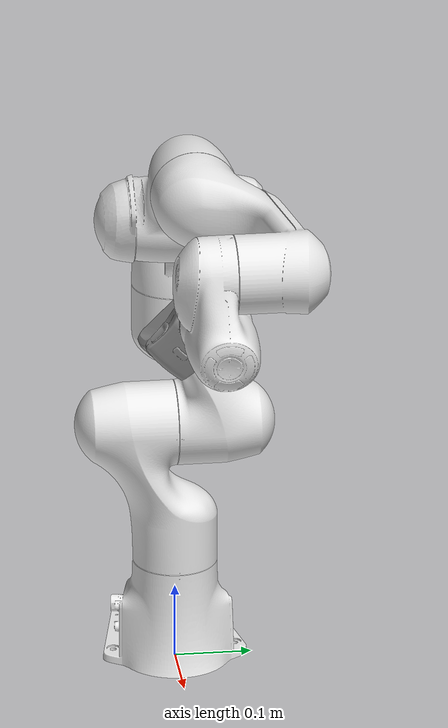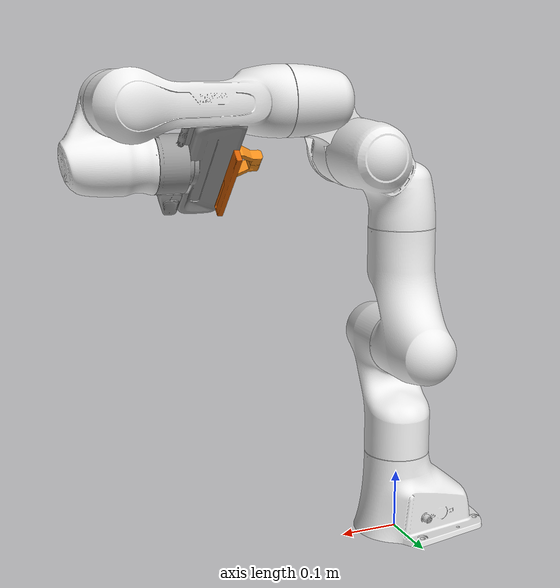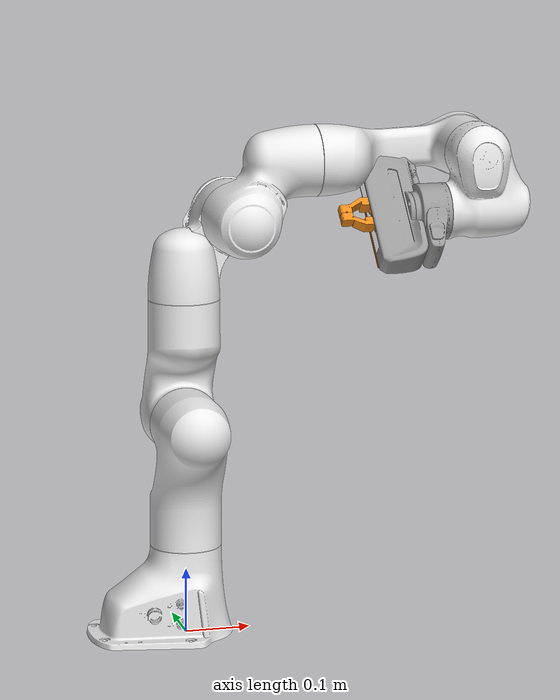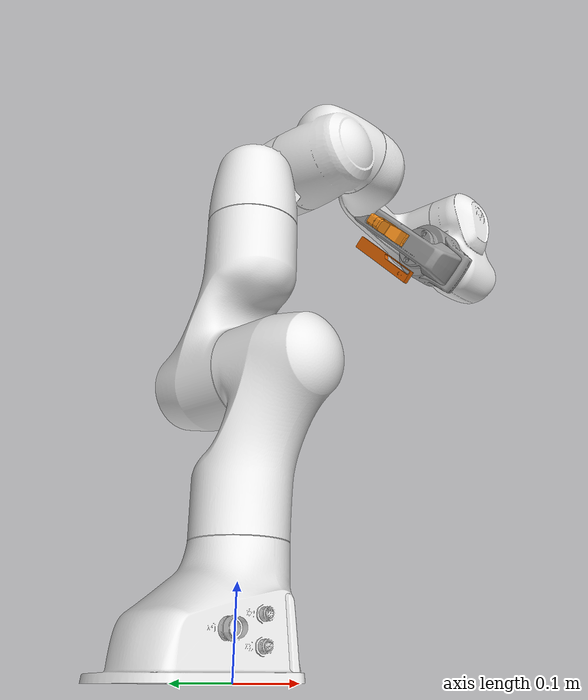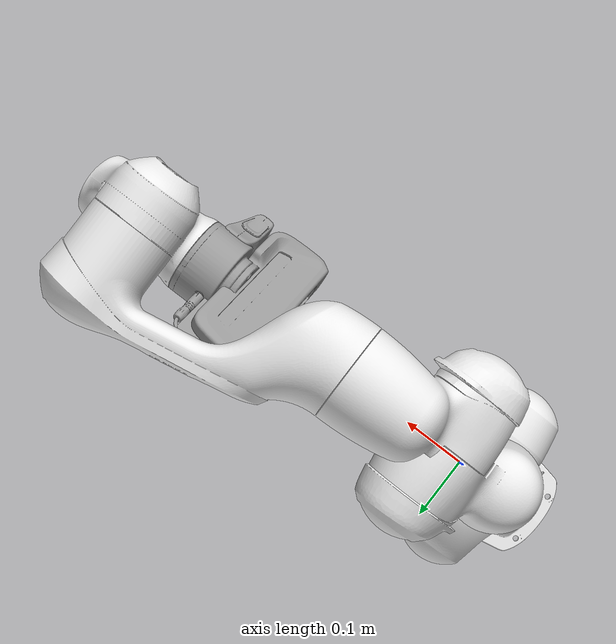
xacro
<?xml version="1.0"?>
<robot xmlns:xacro="http://www.ros.org/wiki/xacro" name="panda">

  <xacro:arg name="use_gazebo" default="true" />
  <xacro:arg name="sensor_prefix" default="r200" />
  <xacro:arg name="ros2_control_params" default="" />

  <!-- franka -->
  <xacro:include filename="$(find panda_description)/urdf/panda_arm_hand.urdf.xacro" />

  <!-- RS -->
  <xacro:include filename="$(find realsense_gazebo_plugin)/urdf/realsense-D435.macro.xacro"/>
  <!-- Here we include the end-effector by setting the parameters -->
  <xacro:realsense-d435 link_prefix="" sensor_prefix="$(arg sensor_prefix)" parent="panda_link8">
    <origin xyz="0.03 -0.03 0.05" rpy="0 ${-pi/2} ${3*pi/4}" />
  </xacro:realsense-d435>
</robot>

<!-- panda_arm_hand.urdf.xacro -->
<robot xmlns:xacro="http://www.ros.org/wiki/xacro" name="panda">
  <xacro:arg name="ros2_control_params" default=""/>
  <xacro:include filename="$(find panda_description)/xacro/panda_arm.xacro"/>
  <xacro:include filename="$(find panda_description)/xacro/hand.xacro"/>

  <!-- for simulation -->
  <xacro:include filename="$(find panda_description)/xacro/panda.gazebo.xacro"/>
  <xacro:include filename="$(find panda_description)/xacro/panda.control.xacro"/>
  <!-- end for simulation -->

  <xacro:panda_arm />
  <xacro:hand ns="panda" rpy="0 0 ${-pi/4}" connected_to="panda_link8"/>
  <xacro:panda_gazebo arm_id="panda"/>
  <xacro:panda_control arm_id="panda" load_hand="true" ros2_control_params="$(arg ros2_control_params)"/>
  <!-- for simulation -->
  <xacro:arg name="robot_name" default="panda"/>
  <!-- end for simulation -->
</robot>

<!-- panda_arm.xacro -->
<robot xmlns:xacro="http://www.ros.org/wiki/xacro" name="panda">
  <xacro:macro name="panda_arm" params="arm_id:='panda' description_pkg:='panda_description' connected_to:='' xyz:='0 0 0' rpy:='0 0 0'">

    <!--
    Panda is either connected to an external link
    or to a virtual world link.
    -->

    <xacro:unless value="${not connected_to}">
      <joint name="${arm_id}_joint_${connected_to}" type="fixed">
        <parent link="${connected_to}"/>
        <child link="${arm_id}_link0"/>
        <origin rpy="${rpy}" xyz="${xyz}"/>
      </joint>
    </xacro:unless>

    <!-- for simulation -->
    <xacro:if value="${not connected_to}">
      <link name="world" />

      <joint name="robot_to_world" type="fixed">
        <parent link="world" />
        <child link="${arm_id}_link0" />
        <origin xyz="0.0 0.0 0.0" rpy="0.0 0.0 0.0" />
      </joint>
      </xacro:if>
    <xacro:property name="joint_damping" value="1.0"/>
    <!-- end for simulation -->

    <link name="${arm_id}_link0">
      <visual>
        <geometry>
          <mesh filename="package://${description_pkg}/meshes/visual/link0.dae"/>
        </geometry>
      </visual>
      <collision>
        <geometry>
          <mesh filename="package://${description_pkg}/meshes/collision/link0.stl"/>
        </geometry>
      </collision>

      <!-- for simulation -->
      <inertial>
        <origin xyz="0 0 0" rpy="0 0 0" />
        <mass value="3.06" />
        <inertia ixx="0.3" ixy="0.0" ixz="0.0" iyy="0.3" iyz="0.0" izz="0.3" />
      </inertial>
      <!-- end for simulation -->
    </link>
    <link name="${arm_id}_link1">
      <visual>
        <geometry>
          <mesh filename="package://${description_pkg}/meshes/visual/link1.dae"/>
        </geometry>
      </visual>
      <collision>
        <geometry>
          <mesh filename="package://${description_pkg}/meshes/collision/link1.stl"/>
        </geometry>
      </collision>

      <!-- for simulation -->
      <inertial>
        <origin xyz="0 0 0" rpy="0 0 0" />
        <mass value="2.34" />
        <inertia ixx="0.3" ixy="0.0" ixz="0.0" iyy="0.3" iyz="0.0" izz="0.3" />
      </inertial>
      <!-- end for simulation -->
    </link>
    <joint name="${arm_id}_joint1" type="revolute">
      <safety_controller k_position="100.0" k_velocity="40.0" soft_lower_limit="-2.8973" soft_upper_limit="2.8973"/>
      <origin rpy="0 0 0" xyz="0 0 0.333"/>
      <parent link="${arm_id}_link0"/>
      <child link="${arm_id}_link1"/>
      <axis xyz="0 0 1"/>
      <limit effort="87" lower="-2.8973" upper="2.8973" velocity="2.1750"/>

      <!-- for simulation -->
      <dynamics damping="${joint_damping}"/>
      <!-- end for simulation -->
    </joint>
    <link name="${arm_id}_link2">
      <visual>
        <geometry>
          <mesh filename="package://${description_pkg}/meshes/visual/link2.dae"/>
        </geometry>
      </visual>
      <collision>
        <geometry>
          <mesh filename="package://${description_pkg}/meshes/collision/link2.stl"/>
        </geometry>
      </collision>

      <!-- for simulation -->
      <inertial>
        <origin xyz="0 0 0" rpy="0 0 0" />
        <mass value="2.36" />
        <inertia ixx="0.3" ixy="0.0" ixz="0.0" iyy="0.3" iyz="0.0" izz="0.3" />
      </inertial>
      <!-- end for simulation -->
    </link>
    <joint name="${arm_id}_joint2" type="revolute">
      <safety_controller k_position="100.0" k_velocity="40.0" soft_lower_limit="-1.7628" soft_upper_limit="1.7628"/>
      <origin rpy="${-pi/2} 0 0" xyz="0 0 0"/>
      <parent link="${arm_id}_link1"/>
      <child link="${arm_id}_link2"/>
      <axis xyz="0 0 1"/>
      <limit effort="87" lower="-1.7628" upper="1.7628" velocity="2.1750"/>

      <!-- for simulation -->
      <dynamics damping="${joint_damping}"/>
      <!-- end for simulation -->
    </joint>
    <link name="${arm_id}_link3">
      <visual>
        <geometry>
          <mesh filename="package://${description_pkg}/meshes/visual/link3.dae"/>
        </geometry>
      </visual>
      <collision>
        <geometry>
          <mesh filename="package://${description_pkg}/meshes/collision/link3.stl"/>
        </geometry>
      </collision>

      <!-- for simulation -->
      <inertial>
        <origin xyz="0 0 0" rpy="0 0 0" />
        <mass value="2.38" />
        <inertia ixx="0.3" ixy="0.0" ixz="0.0" iyy="0.3" iyz="0.0" izz="0.3" />
      </inertial>
      <!-- end for simulation -->
    </link>
    <joint name="${arm_id}_joint3" type="revolute">
      <safety_controller k_position="100.0" k_velocity="40.0" soft_lower_limit="-2.8973" soft_upper_limit="2.8973"/>
      <origin rpy="${pi/2} 0 0" xyz="0 -0.316 0"/>
      <parent link="${arm_id}_link2"/>
      <child link="${arm_id}_link3"/>
      <axis xyz="0 0 1"/>
      <limit effort="87" lower="-2.8973" upper="2.8973" velocity="2.1750"/>

      <!-- for simulation -->
      <dynamics damping="${joint_damping}"/>
      <!-- end for simulation -->
    </joint>
    <link name="${arm_id}_link4">
      <visual>
        <geometry>
          <mesh filename="package://${description_pkg}/meshes/visual/link4.dae"/>
        </geometry>
      </visual>
      <collision>
        <geometry>
          <mesh filename="package://${description_pkg}/meshes/collision/link4.stl"/>
        </geometry>
      </collision>

      <!-- for simulation -->
      <inertial>
        <origin xyz="0 0 0" rpy="0 0 0" />
        <mass value="2.43" />
        <inertia ixx="0.3" ixy="0.0" ixz="0.0" iyy="0.3" iyz="0.0" izz="0.3" />
      </inertial>
      <!-- end for simulation -->
    </link>
    <joint name="${arm_id}_joint4" type="revolute">
      <safety_controller k_position="100.0" k_velocity="40.0" soft_lower_limit="-3.0718" soft_upper_limit="-0.0698"/>
      <origin rpy="${pi/2} 0 0" xyz="0.0825 0 0"/>
      <parent link="${arm_id}_link3"/>
      <child link="${arm_id}_link4"/>
      <axis xyz="0 0 1"/>
      <limit effort="87" lower="-3.0718" upper="-0.0698" velocity="2.1750"/>

      <!-- for simulation -->
      <dynamics damping="${joint_damping}"/>
      <!-- end for simulation -->
    </joint>
    <link name="${arm_id}_link5">
      <visual>
        <geometry>
          <mesh filename="package://${description_pkg}/meshes/visual/link5.dae"/>
        </geometry>
      </visual>
      <collision>
        <geometry>
          <mesh filename="package://${description_pkg}/meshes/collision/link5.stl"/>
        </geometry>
      </collision>

      <!-- for simulation -->
      <inertial>
        <origin xyz="0 0 0" rpy="0 0 0" />
        <mass value="3.5" />
        <inertia ixx="0.3" ixy="0.0" ixz="0.0" iyy="0.3" iyz="0.0" izz="0.3" />
      </inertial>
      <!-- end for simulation -->
    </link>
    <joint name="${arm_id}_joint5" type="revolute">
      <safety_controller k_position="100.0" k_velocity="40.0" soft_lower_limit="-2.8973" soft_upper_limit="2.8973"/>
      <origin rpy="${-pi/2} 0 0" xyz="-0.0825 0.384 0"/>
      <parent link="${arm_id}_link4"/>
      <child link="${arm_id}_link5"/>
      <axis xyz="0 0 1"/>
      <limit effort="12" lower="-2.8973" upper="2.8973" velocity="2.6100"/>

      <!-- for simulation -->
      <dynamics damping="${joint_damping}"/>
      <!-- end for simulation -->
    </joint>
    <link name="${arm_id}_link6">
      <visual>
        <geometry>
          <mesh filename="package://${description_pkg}/meshes/visual/link6.dae"/>
        </geometry>
      </visual>
      <collision>
        <geometry>
          <mesh filename="package://${description_pkg}/meshes/collision/link6.stl"/>
        </geometry>
      </collision>

      <!-- for simulation -->
      <inertial>
        <origin xyz="0 0 0" rpy="0 0 0" />
        <mass value="1.47" />
        <inertia ixx="0.3" ixy="0.0" ixz="0.0" iyy="0.3" iyz="0.0" izz="0.3" />
      </inertial>
      <!-- end for simulation -->
    </link>
    <joint name="${arm_id}_joint6" type="revolute">
      <safety_controller k_position="100.0" k_velocity="40.0" soft_lower_limit="-0.0175" soft_upper_limit="3.7525"/>
      <origin rpy="${pi/2} 0 0" xyz="0 0 0"/>
      <parent link="${arm_id}_link5"/>
      <child link="${arm_id}_link6"/>
      <axis xyz="0 0 1"/>
      <limit effort="12" lower="-0.0175" upper="3.7525" velocity="2.6100"/>

      <!-- for simulation -->
      <dynamics damping="${joint_damping}"/>
      <!-- end for simulation -->
    </joint>
    <link name="${arm_id}_link7">
      <visual>
        <geometry>
          <mesh filename="package://${description_pkg}/meshes/visual/link7.dae"/>
        </geometry>
      </visual>
      <collision>
        <geometry>
          <mesh filename="package://${description_pkg}/meshes/collision/link7.stl"/>
        </geometry>
      </collision>

      <!-- for simulation -->
      <inertial>
        <origin xyz="0 0 0" rpy="0 0 0" />
        <mass value="0.45" />
        <inertia ixx="0.3" ixy="0.0" ixz="0.0" iyy="0.3" iyz="0.0" izz="0.3" />
      </inertial>
      <!-- end for simulation -->
    </link>
    <joint name="${arm_id}_joint7" type="revolute">
      <safety_controller k_position="100.0" k_velocity="40.0" soft_lower_limit="-2.8973" soft_upper_limit="2.8973"/>
      <origin rpy="${pi/2} 0 0" xyz="0.088 0 0"/>
      <parent link="${arm_id}_link6"/>
      <child link="${arm_id}_link7"/>
      <axis xyz="0 0 1"/>
      <limit effort="12" lower="-2.8973" upper="2.8973" velocity="2.6100"/>

      <!-- for simulation -->
      <dynamics damping="${joint_damping}"/>
      <!-- end for simulation -->
    </joint>
    <link name="${arm_id}_link8">
      <!-- for simulation -->
      <inertial>
        <origin xyz="0 0 0" rpy="0 0 0" />
        <mass value="0.0" />
        <inertia ixx="0.3" ixy="0.0" ixz="0.0" iyy="0.3" iyz="0.0" izz="0.3" />
      </inertial>
      <!-- end for simulation -->
    </link>
    <joint name="${arm_id}_joint8" type="fixed">
      <origin rpy="0 0 0" xyz="0 0 0.107"/>
      <parent link="${arm_id}_link7"/>
      <child link="${arm_id}_link8"/>
      <axis xyz="0 0 0"/>
    </joint>
  </xacro:macro>
</robot>

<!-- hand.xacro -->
<robot xmlns:xacro="http://www.ros.org/wiki/xacro" name="hand">
  <!-- safety_distance:Minimum safety distance in [m] by which the collision volumes are expanded and which is enforced during robot motions -->
  <xacro:macro name="hand" params="connected_to:='' ns:='' rpy:='0 0 0' xyz:='0 0 0' safety_distance:=0">

    <!-- parameters added by luke -->
    <xacro:property name="limit_effort" value="1e4"/>      <!-- default:20 -->
    <xacro:property name="max_velocity" value="0.1"/>     <!-- default:0.2 -->

    <xacro:unless value="${connected_to == ''}">
      <joint name="${ns}_hand_joint" type="fixed">
        <parent link="${connected_to}"/>
        <child link="${ns}_hand"/>
        <origin xyz="${xyz}" rpy="${rpy}"/>
      </joint>
    </xacro:unless>
    <link name="${ns}_hand">
      <visual>
        <geometry>
          <mesh filename="package://panda_description/meshes/visual/hand.dae"/>
        </geometry>
      </visual>

      <collision>
        <geometry>
          <mesh filename="package://panda_description/meshes/collision/hand.stl"/>
        </geometry>
      </collision>

      <!-- for simulation -->
      <inertial>
        <origin xyz="0 0 0" rpy="0 0 0" />
        <mass value="0.68" />
        <inertia ixx="0.1" ixy="0.0" ixz="0.0" iyy="0.1" iyz="0.0" izz="0.1" />
      </inertial>
      <!-- end for simulation -->
    </link>
    <link name="${ns}_leftfinger">
      <visual>
        <geometry>
          <mesh filename="package://panda_description/meshes/visual/finger.dae"/>
        </geometry>
      </visual>

      <collision>
        <geometry>
          <mesh filename="package://panda_description/meshes/collision/finger.stl"/>
        </geometry>
      </collision>

      <!-- for simulation -->
      <inertial>
        <origin xyz="0 0 0" rpy="0 0 0" />
        <mass value="0.01" />
        <inertia ixx="0.1" ixy="0.0" ixz="0.0" iyy="0.1" iyz="0.0" izz="0.1" />
      </inertial>
      <!-- end for simulation -->
    </link>
    <link name="${ns}_rightfinger">
      <visual>
        <origin xyz="0 0 0" rpy="0 0 ${pi}"/>
        <geometry>
          <mesh filename="package://panda_description/meshes/visual/finger.dae"/>
        </geometry>
      </visual>

      <collision>
        <origin xyz="0 0 0" rpy="0 0 ${pi}"/>
        <geometry>
          <mesh filename="package://panda_description/meshes/collision/finger.stl"/>
        </geometry>
      </collision>

      <!-- for simulation -->
      <inertial>
        <origin xyz="0 0 0" rpy="0 0 0" />
        <mass value="0.01" />
        <inertia ixx="0.1" ixy="0.0" ixz="0.0" iyy="0.1" iyz="0.0" izz="0.1" />
      </inertial>
      <!-- end for simulation -->
   </link>
    <joint name="${ns}_finger_joint1" type="prismatic">
      <parent link="${ns}_hand"/>
      <child link="${ns}_leftfinger"/>
      <origin xyz="0 0 0.0584" rpy="0 0 0"/>
      <axis xyz="0 1 0"/>
      <limit effort="${limit_effort}" lower="0.0" upper="0.04" velocity="${max_velocity}"/>
    </joint>
    <joint name="${ns}_finger_joint2" type="prismatic">
      <parent link="${ns}_hand"/>
      <child link="${ns}_rightfinger"/>
      <origin xyz="0 0 0.0584" rpy="0 0 0"/>
      <axis xyz="0 -1 0"/>
      <limit effort="${limit_effort}" lower="0.0" upper="0.04" velocity="${max_velocity}"/>
    </joint>
  </xacro:macro>
</robot>

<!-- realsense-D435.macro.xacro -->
<!--
  D435 macro (ROS2) adapted from the original RS200 xacro.
  Link names are kept for compatibility with existing SRDFs.
-->
<robot xmlns:xacro="http://ros.org/wiki/xacro">
<xacro:macro name="realsense-d435" params="link_prefix:='' sensor_prefix:=r200 parent *origin">

    <!-- Camera link -->
    <link name="${link_prefix}rs200_camera">
        <visual>
            <origin rpy="0 0 0" xyz="0 0 0"/>
            <geometry>
                <mesh filename="package://realsense_gazebo_plugin/models/realsense_camera/meshes/realsense.dae"/>
            </geometry>
        </visual>
        <collision>
            <geometry>
                <box size="0.0078 0.130 0.0192"/>
            </geometry>
        </collision>
        <inertial>
            <mass value="0.0615752"/>
            <origin rpy="0 0 0" xyz="0 0 0"/>
            <inertia ixx="9.108e-05"
                     ixy="0"
                     ixz="0"
                     iyy="2.51e-06"
                     iyz="0"
                     izz="8.931e-05"/>
        </inertial>
    </link>

    <!-- Connect camera to parent frame-->
    <joint name="${link_prefix}realsense_joint" type="fixed">
        <parent link="${parent}"/>
        <child link="${link_prefix}rs200_camera"/>
        <xacro:insert_block name="origin"/>
    </joint>

    <!-- Virtual links representing the cameras positions and orientations-->
    <link name="${link_prefix}color" />
    <link name="${link_prefix}depth" />
    <link name="${link_prefix}ired1" />
    <link name="${link_prefix}ired2" />

    <!-- Joints positioning the virtual links with respect to the camera main link-->
    <joint name="${link_prefix}color_joint" type="fixed">
        <parent link="${link_prefix}rs200_camera" />
        <child link="${link_prefix}color" />
        <origin xyz="0 0 0" rpy="${pi/2} ${pi} ${pi/2}"/>
    </joint>

    <joint name="${link_prefix}depth_joint" type="fixed">
        <parent link="${link_prefix}rs200_camera" />
        <child link="${link_prefix}depth" />
        <origin xyz="0 0 0" rpy="${pi/2} ${pi} ${pi/2}"/>
    </joint>

    <joint name="${link_prefix}ired1_joint" type="fixed">
        <parent link="${link_prefix}rs200_camera" />
        <child link="${link_prefix}ired1" />
        <origin xyz="0 -0.06 0.004" rpy="0 0 0"/>
    </joint>

    <joint name="${link_prefix}ired2_joint" type="fixed">
        <parent link="${link_prefix}rs200_camera" />
        <child link="${link_prefix}ired2" />
        <origin xyz="0 0.01 0.004" rpy="0 0 0"/>
    </joint>

<!-- GAZEBO DEFINITIONS ***************************************-->

    <xacro:if value="$(arg use_gazebo)">
        <!-- Load plugin to the model (URDF) -->
        <gazebo>
            <plugin name="${sensor_prefix}_openni" filename="libgazebo_ros_openni_kinect.so">
                <robotNamespace>r200</robotNamespace>
                <cameraName>camera</cameraName>
                <imageTopicName>color/image_raw</imageTopicName>
                <cameraInfoTopicName>color/camera_info</cameraInfoTopicName>
                <depthImageTopicName>depth/image_raw</depthImageTopicName>
                <depthImageCameraInfoTopicName>depth/camera_info</depthImageCameraInfoTopicName>
                <pointCloudTopicName>depth_registered/points</pointCloudTopicName>
                <frameName>r200_camera_depth_optical_frame</frameName>
                <updateRate>10.0</updateRate>
                <pointCloudCutoff>0.1</pointCloudCutoff>
                <pointCloudCutoffMax>5.0</pointCloudCutoffMax>
            </plugin>
        </gazebo>

        <!-- Load parameters to model's main link-->
        <gazebo reference="${link_prefix}rs200_camera">
            <self_collide>0</self_collide>
            <enable_wind>0</enable_wind>
            <kinematic>0</kinematic>
            <gravity>1</gravity>
            <mu2>1</mu2>
            <fdir1>0 0 0</fdir1>
            <kp>1e+13</kp>
            <kd>1</kd>

            <sensor name="${sensor_prefix}color" type="camera">
                <pose frame="">0 0 0 0 0 0</pose>
                <camera name="${link_prefix}rs200_camera_color">
                <horizontal_fov>1.047</horizontal_fov>
                <image>
                    <width>640</width>
                    <height>480</height>
                    <format>RGB_INT8</format>
                </image>
                <clip>
                    <near>0.1</near>
                    <far>100</far>
                </clip>
                <noise>
                    <type>gaussian</type>
                    <mean>0.0</mean>
                    <stddev>0.007</stddev>
                </noise>
                </camera>
                <always_on>1</always_on>
                <update_rate>60</update_rate>
                <visualize>1</visualize>
            </sensor>
            <sensor name="${sensor_prefix}ired1" type="camera">
                <pose frame="">0 -0.06 0.004 0 0 0</pose>
                <camera name="${link_prefix}rs200_camera_ired1">
                <horizontal_fov>1.047</horizontal_fov>
                <image>
                    <width>640</width>
                    <height>480</height>
                    <format>L_INT8</format>
                </image>
                <clip>
                    <near>0.1</near>
                    <far>100</far>
                </clip>
                <noise>
                    <type>gaussian</type>
                    <mean>0.0</mean>
                    <stddev>0.05</stddev>
                </noise>
                </camera>
                <always_on>1</always_on>
                <update_rate>1</update_rate>
                <visualize>0</visualize>
            </sensor>
            <sensor name="${sensor_prefix}ired2" type="camera">
                <pose frame="">0 0.01 0.004 0 0 0</pose>
                <camera name="${link_prefix}rs200_camera_ired2">
                <horizontal_fov>1.047</horizontal_fov>
                <image>
                    <width>640</width>
                    <height>480</height>
                    <format>L_INT8</format>
                </image>
                <clip>
                    <near>0.1</near>
                    <far>100</far>
                </clip>
                <noise>
                    <type>gaussian</type>
                    <mean>0.0</mean>
                    <stddev>0.05</stddev>
                </noise>
                </camera>
                <always_on>1</always_on>
                <update_rate>1</update_rate>
                <visualize>0</visualize>
            </sensor>
            <sensor name="${sensor_prefix}depth" type="depth">
                <pose frame="">0 0 0 0 0 0</pose>
                <camera name="${link_prefix}rs200_camera_depth">
                <horizontal_fov>1.047</horizontal_fov>
                <image>
                        <width>640</width>
                        <height>480</height>
                </image>
                <clip>
                        <near>0.1</near>
                        <far>100</far>
                </clip>
                <noise>
                        <type>gaussian</type>
                        <mean>0.0</mean>
                        <stddev>0.100</stddev>
                </noise>
                </camera>
                <always_on>1</always_on>
                <update_rate>60</update_rate>
                <visualize>0</visualize>
            </sensor>
        </gazebo>
    </xacro:if>

</xacro:macro>
</robot>
